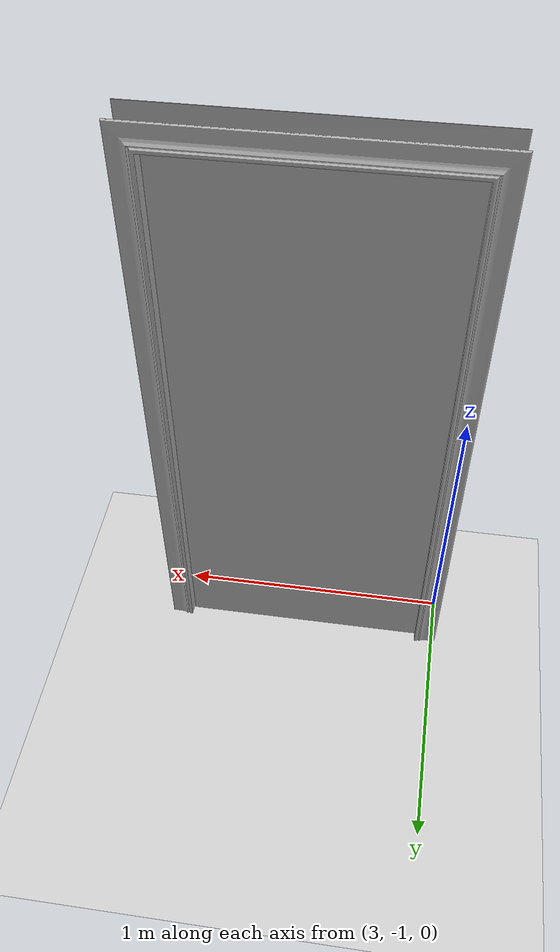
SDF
<sdf version="1.6">
 <world name="default">
  <physics name="default_physics" default="0" type="ode">
   <max_step_size>0.001</max_step_size>
   <real_time_factor>1</real_time_factor>
   <real_time_update_rate>1000</real_time_update_rate>
  </physics>
  <light name="sun" type="directional">
   <pose>0 0 10 0 -0 0</pose>
   <diffuse>0.8 0.8 0.8 1</diffuse>
   <specular>0.2 0.2 0.2 1</specular>
   <attenuation>
    <range>1000</range>
    <constant>0.9</constant>
    <linear>0.01</linear>
    <quadratic>0.001</quadratic>
   </attenuation>
   <direction>-0.5 0.1 -0.9</direction>
  </light>
  <model name="ground_plane">
   <static>1</static>
   <link name="link">
    <collision name="collision">
     <geometry><plane><normal>0 0 1</normal><size>100 100</size></plane></geometry>
     <surface>
      <contact><collide_bitmask>65535</collide_bitmask></contact>
      <friction><ode><mu>100</mu><mu2>50</mu2></ode></friction>
     </surface>
    </collision>
    <visual name="visual">
     <cast_shadows>0</cast_shadows>
     <geometry><plane><normal>0 0 1</normal><size>100 100</size></plane></geometry>
     <material>
      <script><uri>file://media/materials/scripts/gazebo.material</uri><name>Gazebo/Grey</name></script>
     </material>
    </visual>
   </link>
  </model>
  <gravity>0 0 -9.8</gravity>
  <magnetic_field>6e-06 2.3e-05 -4.2e-05</magnetic_field>
  <atmosphere type="adiabatic"/>
  <scene><ambient>0.4 0.4 0.4 1</ambient><background>0.7 0.7 0.7 1</background><shadows>1</shadows></scene>
  <spherical_coordinates>
   <surface_model>EARTH_WGS84</surface_model>
   <latitude_deg>0</latitude_deg>
   <longitude_deg>0</longitude_deg>
   <elevation>0</elevation>
   <heading_deg>0</heading_deg>
  </spherical_coordinates>
  <model name="door">
   <pose>2.98718 -0.808882 1e-06 1.5708 -0 0</pose>
   <link name="door_frame">
    <inertial>
     <pose>0.525 1 0.05 0 -0 0</pose>
     <mass>30</mass>
     <inertia><ixx>1</ixx><ixy>0</ixy><ixz>0</ixz><iyy>1</iyy><iyz>0</iyz><izz>1</izz></inertia>
    </inertial>
    <visual name="visual_frame">
     <geometry><mesh><uri>model://door/meshes/frame.stl</uri><scale>0.1 0.1 0.1</scale></mesh></geometry>
    </visual>
    <collision name="collision_door">
     <geometry><mesh><uri>model://door/meshes/frame.stl</uri><scale>0.1 0.1 0.1</scale></mesh></geometry>
    </collision>
   </link>
   <link name="door_body">
    <inertial>
     <pose>0.525 1 0.05 0 -0 0</pose>
     <mass>1</mass>
     <inertia><ixx>0.083</ixx><ixy>0</ixy><ixz>0</ixz><iyy>0.083</iyy><iyz>0</iyz><izz>0.083</izz></inertia>
    </inertial>
    <collision name="collision_door">
     <pose>0.525 0.995 0.05 0 -0 0</pose>
     <geometry><box><size>0.9 1.99 0.03</size></box></geometry>
    </collision>
    <visual name="visual_door">
     <pose>0.525 0.995 0.05 0 -0 0</pose>
     <geometry><box><size>0.9 1.99 0.03</size></box></geometry>
    </visual>
   </link>
   <link name="door_handle">
    <inertial>
     <pose>0.85 1 0.15 -3.14159 -0 0</pose>
     <mass>1</mass>
     <inertia><ixx>1</ixx><ixy>0</ixy><ixz>0</ixz><iyy>1</iyy><iyz>0</iyz><izz>1</izz></inertia>
    </inertial>
    <visual name="visual_handle">
     <pose>0.85 1 0.15 -3.14159 -0 0</pose>
     <geometry><mesh><uri>model://door/meshes/handle.stl</uri><scale>0.002 0.002 0.002</scale></mesh></geometry>
    </visual>
    <collision name="collision_door">
     <pose>0.85 1 0.15 -3.14159 -0 0</pose>
     <geometry><mesh><uri>model://door/meshes/handle.stl</uri><scale>0.002 0.002 0.002</scale></mesh></geometry>
    </collision>
   </link>
   <joint name="handle_joint" type="revolute">
    <child>door_handle</child>
    <parent>door_body</parent>
    <axis>
     <limit><lower>0</lower><upper>0</upper></limit>
     <xyz>0 1 0</xyz>
     <dynamics>
      <damping>1</damping>
      <spring_reference>0</spring_reference>
      <spring_stiffness>0</spring_stiffness>
     </dynamics>
     <use_parent_model_frame>1</use_parent_model_frame>
     <use_parent_model_frame>1</use_parent_model_frame>
    </axis>
    <physics><ode><cfm_damping>1</cfm_damping><limit><cfm>0</cfm><erp>0.2</erp></limit></ode></physics>
   </joint>
   <joint name="door_hinge" type="revolute">
    <parent>door_frame</parent>
    <child>door_body</child>
    <pose>0.075 0 0.065 0 -0 0</pose>
    <axis>
     <xyz>0 1 0</xyz>
     <dynamics>
      <damping>0.1</damping>
      <friction>0.1</friction>
      <spring_reference>0</spring_reference>
      <spring_stiffness>0</spring_stiffness>
     </dynamics>
     <limit><lower>-1.57</lower><upper>0</upper></limit>
     <use_parent_model_frame>1</use_parent_model_frame>
    </axis>
   </joint>
   <joint name="world_joint" type="revolute">
    <child>door_frame</child>
    <parent>world</parent>
    <axis>
     <limit><lower>0</lower><upper>0</upper></limit>
     <xyz>0 1 0</xyz>
     <dynamics>
      <damping>1</damping>
      <spring_reference>0</spring_reference>
      <spring_stiffness>0</spring_stiffness>
     </dynamics>
     <use_parent_model_frame>1</use_parent_model_frame>
     <use_parent_model_frame>1</use_parent_model_frame>
    </axis>
    <physics><ode><cfm_damping>1</cfm_damping><limit><cfm>0</cfm><erp>0.2</erp></limit></ode></physics>
   </joint>
  </model>
 </world>
</sdf>
